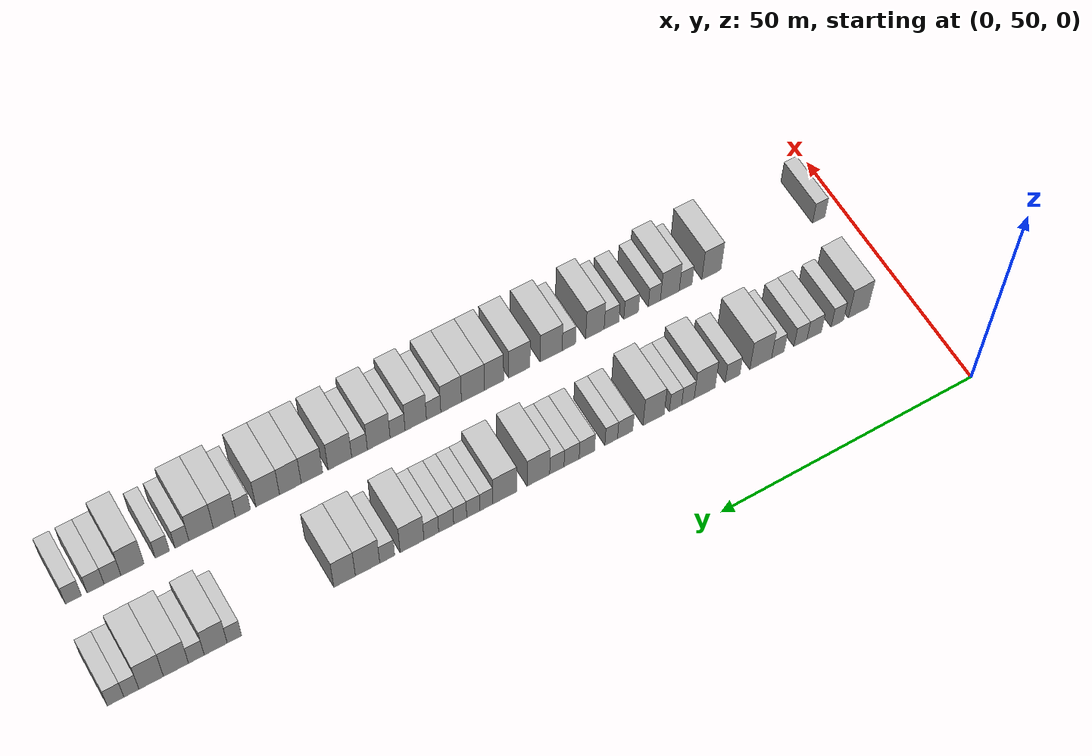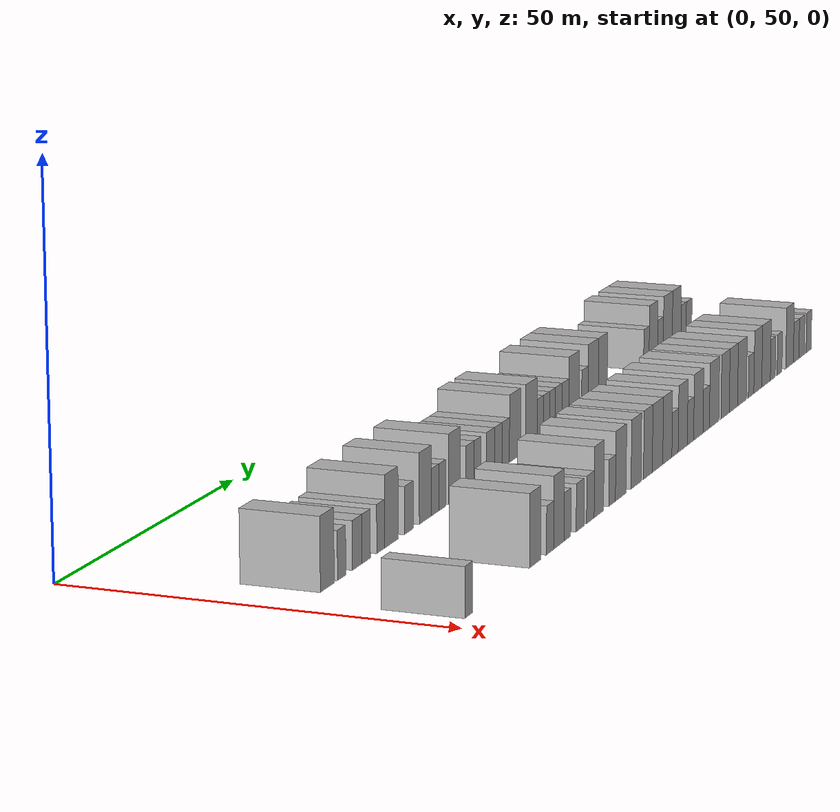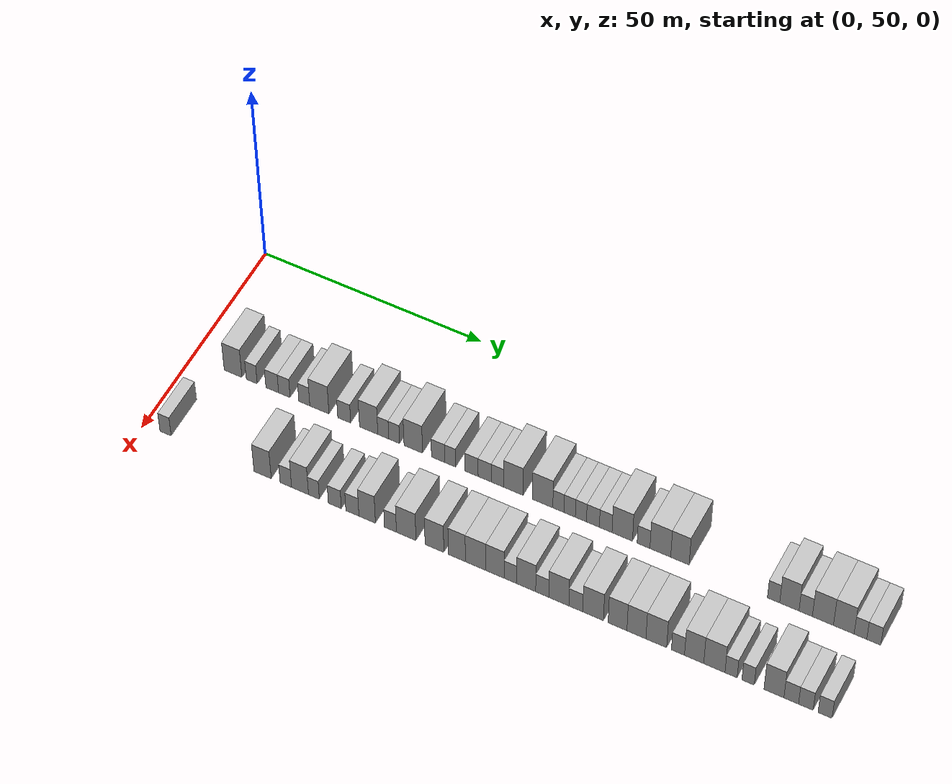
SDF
<sdf version="1.6">
 <world name="default">
  <model name="building_67">
   <static>1</static>
   <pose>25.0000 59.4550 0 0.000000 0.000000 0.000000</pose>
   <link name="link">
    <pose>0 0 4.50 0 0 0</pose>
    <collision name="collision"><geometry><box><size>10.0000 4.0994 9.0000</size></box></geometry></collision>
    <visual name="visual">
     <cast_shadows>0</cast_shadows>
     <geometry><box><size>10.0000 4.0994 9.0000</size></box></geometry>
     <material>
      <script>
       <uri>model://HANNAS_wall/materials/scripts</uri>
       <uri>model://HANNAS_wall/materials/textures</uri>
       <name>vrc/HANNAS_wall</name>
      </script>
     </material>
    </visual>
   </link>
  </model>
  <model name="building_68">
   <static>1</static>
   <pose>25.0000 63.7622 0 0.000000 0.000000 0.000000</pose>
   <link name="link">
    <pose>0 0 3.00 0 0 0</pose>
    <collision name="collision"><geometry><box><size>10.0000 2.5149 6.0000</size></box></geometry></collision>
    <visual name="visual">
     <cast_shadows>0</cast_shadows>
     <geometry><box><size>10.0000 2.5149 6.0000</size></box></geometry>
     <material>
      <script>
       <uri>model://HANNAS_wall/materials/scripts</uri>
       <uri>model://HANNAS_wall/materials/textures</uri>
       <name>vrc/HANNAS_wall</name>
      </script>
     </material>
    </visual>
   </link>
  </model>
  <model name="building_69">
   <static>1</static>
   <pose>25.0000 68.4789 0 0.000000 0.000000 0.000000</pose>
   <link name="link">
    <pose>0 0 3.00 0 0 0</pose>
    <collision name="collision"><geometry><box><size>10.0000 2.9186 6.0000</size></box></geometry></collision>
    <visual name="visual">
     <cast_shadows>0</cast_shadows>
     <geometry><box><size>10.0000 2.9186 6.0000</size></box></geometry>
     <material>
      <script>
       <uri>model://HANNAS_wall/materials/scripts</uri>
       <uri>model://HANNAS_wall/materials/textures</uri>
       <name>vrc/HANNAS_wall</name>
      </script>
     </material>
    </visual>
   </link>
  </model>
  <model name="building_70">
   <static>1</static>
   <pose>25.0000 71.2532 0 0.000000 0.000000 0.000000</pose>
   <link name="link">
    <pose>0 0 3.00 0 0 0</pose>
    <collision name="collision"><geometry><box><size>10.0000 2.6300 6.0000</size></box></geometry></collision>
    <visual name="visual">
     <cast_shadows>0</cast_shadows>
     <geometry><box><size>10.0000 2.6300 6.0000</size></box></geometry>
     <material>
      <script>
       <uri>model://HANNAS_wall/materials/scripts</uri>
       <uri>model://HANNAS_wall/materials/textures</uri>
       <name>vrc/HANNAS_wall</name>
      </script>
     </material>
    </visual>
   </link>
  </model>
  <model name="building_71">
   <static>1</static>
   <pose>25.0000 75.8257 0 0.000000 0.000000 0.000000</pose>
   <link name="link">
    <pose>0 0 3.00 0 0 0</pose>
    <collision name="collision"><geometry><box><size>10.0000 2.5148 6.0000</size></box></geometry></collision>
    <visual name="visual">
     <cast_shadows>0</cast_shadows>
     <geometry><box><size>10.0000 2.5148 6.0000</size></box></geometry>
     <material>
      <script>
       <uri>model://HANNAS_wall/materials/scripts</uri>
       <uri>model://HANNAS_wall/materials/textures</uri>
       <name>vrc/HANNAS_wall</name>
      </script>
     </material>
    </visual>
   </link>
  </model>
  <model name="building_72">
   <static>1</static>
   <pose>25.0000 79.2634 0 0.000000 0.000000 0.000000</pose>
   <link name="link">
    <pose>0 0 4.50 0 0 0</pose>
    <collision name="collision"><geometry><box><size>10.0000 4.3607 9.0000</size></box></geometry></collision>
    <visual name="visual">
     <cast_shadows>0</cast_shadows>
     <geometry><box><size>10.0000 4.3607 9.0000</size></box></geometry>
     <material>
      <script>
       <uri>model://HANNAS_wall/materials/scripts</uri>
       <uri>model://HANNAS_wall/materials/textures</uri>
       <name>vrc/HANNAS_wall</name>
      </script>
     </material>
    </visual>
   </link>
  </model>
  <model name="building_73">
   <static>1</static>
   <pose>25.0000 84.9128 0 0.000000 0.000000 0.000000</pose>
   <link name="link">
    <pose>0 0 3.00 0 0 0</pose>
    <collision name="collision"><geometry><box><size>10.0000 2.9382 6.0000</size></box></geometry></collision>
    <visual name="visual">
     <cast_shadows>0</cast_shadows>
     <geometry><box><size>10.0000 2.9382 6.0000</size></box></geometry>
     <material>
      <script>
       <uri>model://HANNAS_wall/materials/scripts</uri>
       <uri>model://HANNAS_wall/materials/textures</uri>
       <name>vrc/HANNAS_wall</name>
      </script>
     </material>
    </visual>
   </link>
  </model>
  <model name="building_74">
   <static>1</static>
   <pose>25.0000 90.4444 0 0.000000 0.000000 0.000000</pose>
   <link name="link">
    <pose>0 0 4.50 0 0 0</pose>
    <collision name="collision"><geometry><box><size>10.0000 4.1249 9.0000</size></box></geometry></collision>
    <visual name="visual">
     <cast_shadows>0</cast_shadows>
     <geometry><box><size>10.0000 4.1249 9.0000</size></box></geometry>
     <material>
      <script>
       <uri>model://HANNAS_wall/materials/scripts</uri>
       <uri>model://HANNAS_wall/materials/textures</uri>
       <name>vrc/HANNAS_wall</name>
      </script>
     </material>
    </visual>
   </link>
  </model>
  <model name="building_75">
   <static>1</static>
   <pose>25.0000 93.7471 0 0.000000 0.000000 0.000000</pose>
   <link name="link">
    <pose>0 0 3.00 0 0 0</pose>
    <collision name="collision"><geometry><box><size>10.0000 2.4805 6.0000</size></box></geometry></collision>
    <visual name="visual">
     <cast_shadows>0</cast_shadows>
     <geometry><box><size>10.0000 2.4805 6.0000</size></box></geometry>
     <material>
      <script>
       <uri>model://HANNAS_wall/materials/scripts</uri>
       <uri>model://HANNAS_wall/materials/textures</uri>
       <name>vrc/HANNAS_wall</name>
      </script>
     </material>
    </visual>
   </link>
  </model>
  <model name="building_76">
   <static>1</static>
   <pose>25.0000 96.1940 0 0.000000 0.000000 0.000000</pose>
   <link name="link">
    <pose>0 0 3.00 0 0 0</pose>
    <collision name="collision"><geometry><box><size>10.0000 2.4133 6.0000</size></box></geometry></collision>
    <visual name="visual">
     <cast_shadows>0</cast_shadows>
     <geometry><box><size>10.0000 2.4133 6.0000</size></box></geometry>
     <material>
      <script>
       <uri>model://HANNAS_wall/materials/scripts</uri>
       <uri>model://HANNAS_wall/materials/textures</uri>
       <name>vrc/HANNAS_wall</name>
      </script>
     </material>
    </visual>
   </link>
  </model>
  <model name="building_77">
   <static>1</static>
   <pose>25.0000 100.4716 0 0.000000 0.000000 0.000000</pose>
   <link name="link">
    <pose>0 0 4.50 0 0 0</pose>
    <collision name="collision"><geometry><box><size>10.0000 4.1419 9.0000</size></box></geometry></collision>
    <visual name="visual">
     <cast_shadows>0</cast_shadows>
     <geometry><box><size>10.0000 4.1419 9.0000</size></box></geometry>
     <material>
      <script>
       <uri>model://HANNAS_wall/materials/scripts</uri>
       <uri>model://HANNAS_wall/materials/textures</uri>
       <name>vrc/HANNAS_wall</name>
      </script>
     </material>
    </visual>
   </link>
  </model>
  <model name="building_78">
   <static>1</static>
   <pose>25.0000 106.0221 0 0.000000 0.000000 0.000000</pose>
   <link name="link">
    <pose>0 0 3.00 0 0 0</pose>
    <collision name="collision"><geometry><box><size>10.0000 2.9590 6.0000</size></box></geometry></collision>
    <visual name="visual">
     <cast_shadows>0</cast_shadows>
     <geometry><box><size>10.0000 2.9590 6.0000</size></box></geometry>
     <material>
      <script>
       <uri>model://HANNAS_wall/materials/scripts</uri>
       <uri>model://HANNAS_wall/materials/textures</uri>
       <name>vrc/HANNAS_wall</name>
      </script>
     </material>
    </visual>
   </link>
  </model>
  <model name="building_79">
   <static>1</static>
   <pose>25.0000 108.7232 0 0.000000 0.000000 0.000000</pose>
   <link name="link">
    <pose>0 0 3.00 0 0 0</pose>
    <collision name="collision"><geometry><box><size>10.0000 2.4432 6.0000</size></box></geometry></collision>
    <visual name="visual">
     <cast_shadows>0</cast_shadows>
     <geometry><box><size>10.0000 2.4432 6.0000</size></box></geometry>
     <material>
      <script>
       <uri>model://HANNAS_wall/materials/scripts</uri>
       <uri>model://HANNAS_wall/materials/textures</uri>
       <name>vrc/HANNAS_wall</name>
      </script>
     </material>
    </visual>
   </link>
  </model>
  <model name="building_80">
   <static>1</static>
   <pose>25.0000 113.4279 0 0.000000 0.000000 0.000000</pose>
   <link name="link">
    <pose>0 0 3.00 0 0 0</pose>
    <collision name="collision"><geometry><box><size>10.0000 2.9661 6.0000</size></box></geometry></collision>
    <visual name="visual">
     <cast_shadows>0</cast_shadows>
     <geometry><box><size>10.0000 2.9661 6.0000</size></box></geometry>
     <material>
      <script>
       <uri>model://HANNAS_wall/materials/scripts</uri>
       <uri>model://HANNAS_wall/materials/textures</uri>
       <name>vrc/HANNAS_wall</name>
      </script>
     </material>
    </visual>
   </link>
  </model>
  <model name="building_81">
   <static>1</static>
   <pose>25.0000 116.3628 0 0.000000 0.000000 0.000000</pose>
   <link name="link">
    <pose>0 0 3.00 0 0 0</pose>
    <collision name="collision"><geometry><box><size>10.0000 2.9037 6.0000</size></box></geometry></collision>
    <visual name="visual">
     <cast_shadows>0</cast_shadows>
     <geometry><box><size>10.0000 2.9037 6.0000</size></box></geometry>
     <material>
      <script>
       <uri>model://HANNAS_wall/materials/scripts</uri>
       <uri>model://HANNAS_wall/materials/textures</uri>
       <name>vrc/HANNAS_wall</name>
      </script>
     </material>
    </visual>
   </link>
  </model>
  <model name="building_82">
   <static>1</static>
   <pose>25.0000 119.1823 0 0.000000 0.000000 0.000000</pose>
   <link name="link">
    <pose>0 0 3.00 0 0 0</pose>
    <collision name="collision"><geometry><box><size>10.0000 2.7352 6.0000</size></box></geometry></collision>
    <visual name="visual">
     <cast_shadows>0</cast_shadows>
     <geometry><box><size>10.0000 2.7352 6.0000</size></box></geometry>
     <material>
      <script>
       <uri>model://HANNAS_wall/materials/scripts</uri>
       <uri>model://HANNAS_wall/materials/textures</uri>
       <name>vrc/HANNAS_wall</name>
      </script>
     </material>
    </visual>
   </link>
  </model>
  <model name="building_83">
   <static>1</static>
   <pose>25.0000 122.6996 0 0.000000 0.000000 0.000000</pose>
   <link name="link">
    <pose>0 0 4.50 0 0 0</pose>
    <collision name="collision"><geometry><box><size>10.0000 4.2995 9.0000</size></box></geometry></collision>
    <visual name="visual">
     <cast_shadows>0</cast_shadows>
     <geometry><box><size>10.0000 4.2995 9.0000</size></box></geometry>
     <material>
      <script>
       <uri>model://HANNAS_wall/materials/scripts</uri>
       <uri>model://HANNAS_wall/materials/textures</uri>
       <name>vrc/HANNAS_wall</name>
      </script>
     </material>
    </visual>
   </link>
  </model>
  <model name="building_84">
   <static>1</static>
   <pose>25.0000 129.0897 0 0.000000 0.000000 0.000000</pose>
   <link name="link">
    <pose>0 0 4.50 0 0 0</pose>
    <collision name="collision"><geometry><box><size>10.0000 4.4806 9.0000</size></box></geometry></collision>
    <visual name="visual">
     <cast_shadows>0</cast_shadows>
     <geometry><box><size>10.0000 4.4806 9.0000</size></box></geometry>
     <material>
      <script>
       <uri>model://HANNAS_wall/materials/scripts</uri>
       <uri>model://HANNAS_wall/materials/textures</uri>
       <name>vrc/HANNAS_wall</name>
      </script>
     </material>
    </visual>
   </link>
  </model>
  <model name="building_85">
   <static>1</static>
   <pose>25.0000 132.5447 0 0.000000 0.000000 0.000000</pose>
   <link name="link">
    <pose>0 0 3.00 0 0 0</pose>
    <collision name="collision"><geometry><box><size>10.0000 2.4294 6.0000</size></box></geometry></collision>
    <visual name="visual">
     <cast_shadows>0</cast_shadows>
     <geometry><box><size>10.0000 2.4294 6.0000</size></box></geometry>
     <material>
      <script>
       <uri>model://HANNAS_wall/materials/scripts</uri>
       <uri>model://HANNAS_wall/materials/textures</uri>
       <name>vrc/HANNAS_wall</name>
      </script>
     </material>
    </visual>
   </link>
  </model>
  <model name="building_86">
   <static>1</static>
   <pose>25.0000 134.9929 0 0.000000 0.000000 0.000000</pose>
   <link name="link">
    <pose>0 0 3.00 0 0 0</pose>
    <collision name="collision"><geometry><box><size>10.0000 2.4671 6.0000</size></box></geometry></collision>
    <visual name="visual">
     <cast_shadows>0</cast_shadows>
     <geometry><box><size>10.0000 2.4671 6.0000</size></box></geometry>
     <material>
      <script>
       <uri>model://HANNAS_wall/materials/scripts</uri>
       <uri>model://HANNAS_wall/materials/textures</uri>
       <name>vrc/HANNAS_wall</name>
      </script>
     </material>
    </visual>
   </link>
  </model>
  <model name="building_87">
   <static>1</static>
   <pose>25.0000 137.4405 0 0.000000 0.000000 0.000000</pose>
   <link name="link">
    <pose>0 0 3.00 0 0 0</pose>
    <collision name="collision"><geometry><box><size>10.0000 2.4281 6.0000</size></box></geometry></collision>
    <visual name="visual">
     <cast_shadows>0</cast_shadows>
     <geometry><box><size>10.0000 2.4281 6.0000</size></box></geometry>
     <material>
      <script>
       <uri>model://HANNAS_wall/materials/scripts</uri>
       <uri>model://HANNAS_wall/materials/textures</uri>
       <name>vrc/HANNAS_wall</name>
      </script>
     </material>
    </visual>
   </link>
  </model>
  <model name="building_88">
   <static>1</static>
   <pose>25.0000 140.0556 0 0.000000 0.000000 0.000000</pose>
   <link name="link">
    <pose>0 0 3.00 0 0 0</pose>
    <collision name="collision"><geometry><box><size>10.0000 2.8020 6.0000</size></box></geometry></collision>
    <visual name="visual">
     <cast_shadows>0</cast_shadows>
     <geometry><box><size>10.0000 2.8020 6.0000</size></box></geometry>
     <material>
      <script>
       <uri>model://HANNAS_wall/materials/scripts</uri>
       <uri>model://HANNAS_wall/materials/textures</uri>
       <name>vrc/HANNAS_wall</name>
      </script>
     </material>
    </visual>
   </link>
  </model>
  <model name="building_89">
   <static>1</static>
   <pose>25.0000 142.8223 0 0.000000 0.000000 0.000000</pose>
   <link name="link">
    <pose>0 0 3.00 0 0 0</pose>
    <collision name="collision"><geometry><box><size>10.0000 2.7314 6.0000</size></box></geometry></collision>
    <visual name="visual">
     <cast_shadows>0</cast_shadows>
     <geometry><box><size>10.0000 2.7314 6.0000</size></box></geometry>
     <material>
      <script>
       <uri>model://HANNAS_wall/materials/scripts</uri>
       <uri>model://HANNAS_wall/materials/textures</uri>
       <name>vrc/HANNAS_wall</name>
      </script>
     </material>
    </visual>
   </link>
  </model>
  <model name="building_90">
   <static>1</static>
   <pose>25.0000 146.3913 0 0.000000 0.000000 0.000000</pose>
   <link name="link">
    <pose>0 0 4.50 0 0 0</pose>
    <collision name="collision"><geometry><box><size>10.0000 4.4065 9.0000</size></box></geometry></collision>
    <visual name="visual">
     <cast_shadows>0</cast_shadows>
     <geometry><box><size>10.0000 4.4065 9.0000</size></box></geometry>
     <material>
      <script>
       <uri>model://HANNAS_wall/materials/scripts</uri>
       <uri>model://HANNAS_wall/materials/textures</uri>
       <name>vrc/HANNAS_wall</name>
      </script>
     </material>
    </visual>
   </link>
  </model>
  <model name="building_91">
   <static>1</static>
   <pose>25.0000 150.9687 0 0.000000 0.000000 0.000000</pose>
   <link name="link">
    <pose>0 0 3.00 0 0 0</pose>
    <collision name="collision"><geometry><box><size>10.0000 2.7483 6.0000</size></box></geometry></collision>
    <visual name="visual">
     <cast_shadows>0</cast_shadows>
     <geometry><box><size>10.0000 2.7483 6.0000</size></box></geometry>
     <material>
      <script>
       <uri>model://HANNAS_wall/materials/scripts</uri>
       <uri>model://HANNAS_wall/materials/textures</uri>
       <name>vrc/HANNAS_wall</name>
      </script>
     </material>
    </visual>
   </link>
  </model>
  <model name="building_92">
   <static>1</static>
   <pose>25.0000 154.5702 0 0.000000 0.000000 0.000000</pose>
   <link name="link">
    <pose>0 0 4.50 0 0 0</pose>
    <collision name="collision"><geometry><box><size>10.0000 4.4548 9.0000</size></box></geometry></collision>
    <visual name="visual">
     <cast_shadows>0</cast_shadows>
     <geometry><box><size>10.0000 4.4548 9.0000</size></box></geometry>
     <material>
      <script>
       <uri>model://HANNAS_wall/materials/scripts</uri>
       <uri>model://HANNAS_wall/materials/textures</uri>
       <name>vrc/HANNAS_wall</name>
      </script>
     </material>
    </visual>
   </link>
  </model>
  <model name="building_93">
   <static>1</static>
   <pose>25.0000 158.7625 0 0.000000 0.000000 0.000000</pose>
   <link name="link">
    <pose>0 0 4.50 0 0 0</pose>
    <collision name="collision"><geometry><box><size>10.0000 3.9299 9.0000</size></box></geometry></collision>
    <visual name="visual">
     <cast_shadows>0</cast_shadows>
     <geometry><box><size>10.0000 3.9299 9.0000</size></box></geometry>
     <material>
      <script>
       <uri>model://HANNAS_wall/materials/scripts</uri>
       <uri>model://HANNAS_wall/materials/textures</uri>
       <name>vrc/HANNAS_wall</name>
      </script>
     </material>
    </visual>
   </link>
  </model>
  <model name="building_94">
   <static>1</static>
   <pose>25.0000 178.5883 0 0.000000 0.000000 0.000000</pose>
   <link name="link">
    <pose>0 0 3.00 0 0 0</pose>
    <collision name="collision"><geometry><box><size>10.0000 2.5739 6.0000</size></box></geometry></collision>
    <visual name="visual">
     <cast_shadows>0</cast_shadows>
     <geometry><box><size>10.0000 2.5739 6.0000</size></box></geometry>
     <material>
      <script>
       <uri>model://HANNAS_wall/materials/scripts</uri>
       <uri>model://HANNAS_wall/materials/textures</uri>
       <name>vrc/HANNAS_wall</name>
      </script>
     </material>
    </visual>
   </link>
  </model>
  <model name="building_95">
   <static>1</static>
   <pose>25.0000 181.8974 0 0.000000 0.000000 0.000000</pose>
   <link name="link">
    <pose>0 0 4.50 0 0 0</pose>
    <collision name="collision"><geometry><box><size>10.0000 4.0443 9.0000</size></box></geometry></collision>
    <visual name="visual">
     <cast_shadows>0</cast_shadows>
     <geometry><box><size>10.0000 4.0443 9.0000</size></box></geometry>
     <material>
      <script>
       <uri>model://HANNAS_wall/materials/scripts</uri>
       <uri>model://HANNAS_wall/materials/textures</uri>
       <name>vrc/HANNAS_wall</name>
      </script>
     </material>
    </visual>
   </link>
  </model>
  <model name="building_96">
   <static>1</static>
   <pose>25.0000 185.3083 0 0.000000 0.000000 0.000000</pose>
   <link name="link">
    <pose>0 0 3.00 0 0 0</pose>
    <collision name="collision"><geometry><box><size>10.0000 2.7775 6.0000</size></box></geometry></collision>
    <visual name="visual">
     <cast_shadows>0</cast_shadows>
     <geometry><box><size>10.0000 2.7775 6.0000</size></box></geometry>
     <material>
      <script>
       <uri>model://HANNAS_wall/materials/scripts</uri>
       <uri>model://HANNAS_wall/materials/textures</uri>
       <name>vrc/HANNAS_wall</name>
      </script>
     </material>
    </visual>
   </link>
  </model>
  <model name="building_97">
   <static>1</static>
   <pose>25.0000 188.8926 0 0.000000 0.000000 0.000000</pose>
   <link name="link">
    <pose>0 0 4.50 0 0 0</pose>
    <collision name="collision"><geometry><box><size>10.0000 4.3911 9.0000</size></box></geometry></collision>
    <visual name="visual">
     <cast_shadows>0</cast_shadows>
     <geometry><box><size>10.0000 4.3911 9.0000</size></box></geometry>
     <material>
      <script>
       <uri>model://HANNAS_wall/materials/scripts</uri>
       <uri>model://HANNAS_wall/materials/textures</uri>
       <name>vrc/HANNAS_wall</name>
      </script>
     </material>
    </visual>
   </link>
  </model>
  <model name="building_98">
   <static>1</static>
   <pose>25.0000 193.2294 0 0.000000 0.000000 0.000000</pose>
   <link name="link">
    <pose>0 0 4.50 0 0 0</pose>
    <collision name="collision"><geometry><box><size>10.0000 4.2827 9.0000</size></box></geometry></collision>
    <visual name="visual">
     <cast_shadows>0</cast_shadows>
     <geometry><box><size>10.0000 4.2827 9.0000</size></box></geometry>
     <material>
      <script>
       <uri>model://HANNAS_wall/materials/scripts</uri>
       <uri>model://HANNAS_wall/materials/textures</uri>
       <name>vrc/HANNAS_wall</name>
      </script>
     </material>
    </visual>
   </link>
  </model>
  <model name="building_99">
   <static>1</static>
   <pose>25.0000 196.6763 0 0.000000 0.000000 0.000000</pose>
   <link name="link">
    <pose>0 0 3.00 0 0 0</pose>
    <collision name="collision"><geometry><box><size>10.0000 2.6111 6.0000</size></box></geometry></collision>
    <visual name="visual">
     <cast_shadows>0</cast_shadows>
     <geometry><box><size>10.0000 2.6111 6.0000</size></box></geometry>
     <material>
      <script>
       <uri>model://HANNAS_wall/materials/scripts</uri>
       <uri>model://HANNAS_wall/materials/textures</uri>
       <name>vrc/HANNAS_wall</name>
      </script>
     </material>
    </visual>
   </link>
  </model>
  <model name="building_100">
   <static>1</static>
   <pose>25.0000 199.4241 0 0.000000 0.000000 0.000000</pose>
   <link name="link">
    <pose>0 0 3.00 0 0 0</pose>
    <collision name="collision"><geometry><box><size>10.0000 2.8844 6.0000</size></box></geometry></collision>
    <visual name="visual">
     <cast_shadows>0</cast_shadows>
     <geometry><box><size>10.0000 2.8844 6.0000</size></box></geometry>
     <material>
      <script>
       <uri>model://HANNAS_wall/materials/scripts</uri>
       <uri>model://HANNAS_wall/materials/textures</uri>
       <name>vrc/HANNAS_wall</name>
      </script>
     </material>
    </visual>
   </link>
  </model>
  <model name="building_165">
   <static>1</static>
   <pose>44.0000 54.9185 0 0.000000 0.000000 0.000000</pose>
   <link name="link">
    <pose>0 0 3.00 0 0 0</pose>
    <collision name="collision"><geometry><box><size>10.0000 2.5703 6.0000</size></box></geometry></collision>
    <visual name="visual">
     <cast_shadows>0</cast_shadows>
     <geometry><box><size>10.0000 2.5703 6.0000</size></box></geometry>
     <material>
      <script>
       <uri>model://HANNAS_wall/materials/scripts</uri>
       <uri>model://HANNAS_wall/materials/textures</uri>
       <name>vrc/HANNAS_wall</name>
      </script>
     </material>
    </visual>
   </link>
  </model>
  <model name="building_166">
   <static>1</static>
   <pose>44.0000 77.0360 0 0.000000 0.000000 0.000000</pose>
   <link name="link">
    <pose>0 0 4.50 0 0 0</pose>
    <collision name="collision"><geometry><box><size>10.0000 3.8882 9.0000</size></box></geometry></collision>
    <visual name="visual">
     <cast_shadows>0</cast_shadows>
     <geometry><box><size>10.0000 3.8882 9.0000</size></box></geometry>
     <material>
      <script>
       <uri>model://HANNAS_wall/materials/scripts</uri>
       <uri>model://HANNAS_wall/materials/textures</uri>
       <name>vrc/HANNAS_wall</name>
      </script>
     </material>
    </visual>
   </link>
  </model>
  <model name="building_167">
   <static>1</static>
   <pose>44.0000 82.2686 0 0.000000 0.000000 0.000000</pose>
   <link name="link">
    <pose>0 0 3.00 0 0 0</pose>
    <collision name="collision"><geometry><box><size>10.0000 2.5770 6.0000</size></box></geometry></collision>
    <visual name="visual">
     <cast_shadows>0</cast_shadows>
     <geometry><box><size>10.0000 2.5770 6.0000</size></box></geometry>
     <material>
      <script>
       <uri>model://HANNAS_wall/materials/scripts</uri>
       <uri>model://HANNAS_wall/materials/textures</uri>
       <name>vrc/HANNAS_wall</name>
      </script>
     </material>
    </visual>
   </link>
  </model>
  <model name="building_168">
   <static>1</static>
   <pose>44.0000 85.4556 0 0.000000 0.000000 0.000000</pose>
   <link name="link">
    <pose>0 0 4.50 0 0 0</pose>
    <collision name="collision"><geometry><box><size>10.0000 3.7969 9.0000</size></box></geometry></collision>
    <visual name="visual">
     <cast_shadows>0</cast_shadows>
     <geometry><box><size>10.0000 3.7969 9.0000</size></box></geometry>
     <material>
      <script>
       <uri>model://HANNAS_wall/materials/scripts</uri>
       <uri>model://HANNAS_wall/materials/textures</uri>
       <name>vrc/HANNAS_wall</name>
      </script>
     </material>
    </visual>
   </link>
  </model>
  <model name="building_169">
   <static>1</static>
   <pose>44.0000 88.5654 0 0.000000 0.000000 0.000000</pose>
   <link name="link">
    <pose>0 0 3.00 0 0 0</pose>
    <collision name="collision"><geometry><box><size>10.0000 2.4226 6.0000</size></box></geometry></collision>
    <visual name="visual">
     <cast_shadows>0</cast_shadows>
     <geometry><box><size>10.0000 2.4226 6.0000</size></box></geometry>
     <material>
      <script>
       <uri>model://HANNAS_wall/materials/scripts</uri>
       <uri>model://HANNAS_wall/materials/textures</uri>
       <name>vrc/HANNAS_wall</name>
      </script>
     </material>
    </visual>
   </link>
  </model>
  <model name="building_170">
   <static>1</static>
   <pose>44.0000 93.2275 0 0.000000 0.000000 0.000000</pose>
   <link name="link">
    <pose>0 0 3.00 0 0 0</pose>
    <collision name="collision"><geometry><box><size>10.0000 2.9016 6.0000</size></box></geometry></collision>
    <visual name="visual">
     <cast_shadows>0</cast_shadows>
     <geometry><box><size>10.0000 2.9016 6.0000</size></box></geometry>
     <material>
      <script>
       <uri>model://HANNAS_wall/materials/scripts</uri>
       <uri>model://HANNAS_wall/materials/textures</uri>
       <name>vrc/HANNAS_wall</name>
      </script>
     </material>
    </visual>
   </link>
  </model>
  <model name="building_171">
   <static>1</static>
   <pose>44.0000 97.1319 0 0.000000 0.000000 0.000000</pose>
   <link name="link">
    <pose>0 0 3.00 0 0 0</pose>
    <collision name="collision"><geometry><box><size>10.0000 2.9074 6.0000</size></box></geometry></collision>
    <visual name="visual">
     <cast_shadows>0</cast_shadows>
     <geometry><box><size>10.0000 2.9074 6.0000</size></box></geometry>
     <material>
      <script>
       <uri>model://HANNAS_wall/materials/scripts</uri>
       <uri>model://HANNAS_wall/materials/textures</uri>
       <name>vrc/HANNAS_wall</name>
      </script>
     </material>
    </visual>
   </link>
  </model>
  <model name="building_172">
   <static>1</static>
   <pose>44.0000 100.4155 0 0.000000 0.000000 0.000000</pose>
   <link name="link">
    <pose>0 0 4.50 0 0 0</pose>
    <collision name="collision"><geometry><box><size>10.0000 3.6598 9.0000</size></box></geometry></collision>
    <visual name="visual">
     <cast_shadows>0</cast_shadows>
     <geometry><box><size>10.0000 3.6598 9.0000</size></box></geometry>
     <material>
      <script>
       <uri>model://HANNAS_wall/materials/scripts</uri>
       <uri>model://HANNAS_wall/materials/textures</uri>
       <name>vrc/HANNAS_wall</name>
      </script>
     </material>
    </visual>
   </link>
  </model>
  <model name="building_173">
   <static>1</static>
   <pose>44.0000 105.5631 0 0.000000 0.000000 0.000000</pose>
   <link name="link">
    <pose>0 0 3.00 0 0 0</pose>
    <collision name="collision"><geometry><box><size>10.0000 2.6354 6.0000</size></box></geometry></collision>
    <visual name="visual">
     <cast_shadows>0</cast_shadows>
     <geometry><box><size>10.0000 2.6354 6.0000</size></box></geometry>
     <material>
      <script>
       <uri>model://HANNAS_wall/materials/scripts</uri>
       <uri>model://HANNAS_wall/materials/textures</uri>
       <name>vrc/HANNAS_wall</name>
      </script>
     </material>
    </visual>
   </link>
  </model>
  <model name="building_174">
   <static>1</static>
   <pose>44.0000 109.0263 0 0.000000 0.000000 0.000000</pose>
   <link name="link">
    <pose>0 0 4.50 0 0 0</pose>
    <collision name="collision"><geometry><box><size>10.0000 4.2910 9.0000</size></box></geometry></collision>
    <visual name="visual">
     <cast_shadows>0</cast_shadows>
     <geometry><box><size>10.0000 4.2910 9.0000</size></box></geometry>
     <material>
      <script>
       <uri>model://HANNAS_wall/materials/scripts</uri>
       <uri>model://HANNAS_wall/materials/textures</uri>
       <name>vrc/HANNAS_wall</name>
      </script>
     </material>
    </visual>
   </link>
  </model>
  <model name="building_175">
   <static>1</static>
   <pose>44.0000 115.2267 0 0.000000 0.000000 0.000000</pose>
   <link name="link">
    <pose>0 0 4.50 0 0 0</pose>
    <collision name="collision"><geometry><box><size>10.0000 4.1096 9.0000</size></box></geometry></collision>
    <visual name="visual">
     <cast_shadows>0</cast_shadows>
     <geometry><box><size>10.0000 4.1096 9.0000</size></box></geometry>
     <material>
      <script>
       <uri>model://HANNAS_wall/materials/scripts</uri>
       <uri>model://HANNAS_wall/materials/textures</uri>
       <name>vrc/HANNAS_wall</name>
      </script>
     </material>
    </visual>
   </link>
  </model>
  <model name="building_176">
   <static>1</static>
   <pose>44.0000 120.1310 0 0.000000 0.000000 0.000000</pose>
   <link name="link">
    <pose>0 0 4.50 0 0 0</pose>
    <collision name="collision"><geometry><box><size>10.0000 3.6991 9.0000</size></box></geometry></collision>
    <visual name="visual">
     <cast_shadows>0</cast_shadows>
     <geometry><box><size>10.0000 3.6991 9.0000</size></box></geometry>
     <material>
      <script>
       <uri>model://HANNAS_wall/materials/scripts</uri>
       <uri>model://HANNAS_wall/materials/textures</uri>
       <name>vrc/HANNAS_wall</name>
      </script>
     </material>
    </visual>
   </link>
  </model>
  <model name="building_177">
   <static>1</static>
   <pose>44.0000 124.1989 0 0.000000 0.000000 0.000000</pose>
   <link name="link">
    <pose>0 0 4.50 0 0 0</pose>
    <collision name="collision"><geometry><box><size>10.0000 4.4366 9.0000</size></box></geometry></collision>
    <visual name="visual">
     <cast_shadows>0</cast_shadows>
     <geometry><box><size>10.0000 4.4366 9.0000</size></box></geometry>
     <material>
      <script>
       <uri>model://HANNAS_wall/materials/scripts</uri>
       <uri>model://HANNAS_wall/materials/textures</uri>
       <name>vrc/HANNAS_wall</name>
      </script>
     </material>
    </visual>
   </link>
  </model>
  <model name="building_178">
   <static>1</static>
   <pose>44.0000 128.3902 0 0.000000 0.000000 0.000000</pose>
   <link name="link">
    <pose>0 0 4.50 0 0 0</pose>
    <collision name="collision"><geometry><box><size>10.0000 3.9460 9.0000</size></box></geometry></collision>
    <visual name="visual">
     <cast_shadows>0</cast_shadows>
     <geometry><box><size>10.0000 3.9460 9.0000</size></box></geometry>
     <material>
      <script>
       <uri>model://HANNAS_wall/materials/scripts</uri>
       <uri>model://HANNAS_wall/materials/textures</uri>
       <name>vrc/HANNAS_wall</name>
      </script>
     </material>
    </visual>
   </link>
  </model>
  <model name="building_179">
   <static>1</static>
   <pose>44.0000 131.7360 0 0.000000 0.000000 0.000000</pose>
   <link name="link">
    <pose>0 0 3.00 0 0 0</pose>
    <collision name="collision"><geometry><box><size>10.0000 2.7457 6.0000</size></box></geometry></collision>
    <visual name="visual">
     <cast_shadows>0</cast_shadows>
     <geometry><box><size>10.0000 2.7457 6.0000</size></box></geometry>
     <material>
      <script>
       <uri>model://HANNAS_wall/materials/scripts</uri>
       <uri>model://HANNAS_wall/materials/textures</uri>
       <name>vrc/HANNAS_wall</name>
      </script>
     </material>
    </visual>
   </link>
  </model>
  <model name="building_180">
   <static>1</static>
   <pose>44.0000 135.1361 0 0.000000 0.000000 0.000000</pose>
   <link name="link">
    <pose>0 0 4.50 0 0 0</pose>
    <collision name="collision"><geometry><box><size>10.0000 4.0544 9.0000</size></box></geometry></collision>
    <visual name="visual">
     <cast_shadows>0</cast_shadows>
     <geometry><box><size>10.0000 4.0544 9.0000</size></box></geometry>
     <material>
      <script>
       <uri>model://HANNAS_wall/materials/scripts</uri>
       <uri>model://HANNAS_wall/materials/textures</uri>
       <name>vrc/HANNAS_wall</name>
      </script>
     </material>
    </visual>
   </link>
  </model>
  <model name="building_181">
   <static>1</static>
   <pose>44.0000 138.5826 0 0.000000 0.000000 0.000000</pose>
   <link name="link">
    <pose>0 0 3.00 0 0 0</pose>
    <collision name="collision"><geometry><box><size>10.0000 2.8386 6.0000</size></box></geometry></collision>
    <visual name="visual">
     <cast_shadows>0</cast_shadows>
     <geometry><box><size>10.0000 2.8386 6.0000</size></box></geometry>
     <material>
      <script>
       <uri>model://HANNAS_wall/materials/scripts</uri>
       <uri>model://HANNAS_wall/materials/textures</uri>
       <name>vrc/HANNAS_wall</name>
      </script>
     </material>
    </visual>
   </link>
  </model>
  <model name="building_182">
   <static>1</static>
   <pose>44.0000 142.1379 0 0.000000 0.000000 0.000000</pose>
   <link name="link">
    <pose>0 0 4.50 0 0 0</pose>
    <collision name="collision"><geometry><box><size>10.0000 4.2719 9.0000</size></box></geometry></collision>
    <visual name="visual">
     <cast_shadows>0</cast_shadows>
     <geometry><box><size>10.0000 4.2719 9.0000</size></box></geometry>
     <material>
      <script>
       <uri>model://HANNAS_wall/materials/scripts</uri>
       <uri>model://HANNAS_wall/materials/textures</uri>
       <name>vrc/HANNAS_wall</name>
      </script>
     </material>
    </visual>
   </link>
  </model>
  <model name="building_183">
   <static>1</static>
   <pose>44.0000 145.7461 0 0.000000 0.000000 0.000000</pose>
   <link name="link">
    <pose>0 0 3.00 0 0 0</pose>
    <collision name="collision"><geometry><box><size>10.0000 2.9446 6.0000</size></box></geometry></collision>
    <visual name="visual">
     <cast_shadows>0</cast_shadows>
     <geometry><box><size>10.0000 2.9446 6.0000</size></box></geometry>
     <material>
      <script>
       <uri>model://HANNAS_wall/materials/scripts</uri>
       <uri>model://HANNAS_wall/materials/textures</uri>
       <name>vrc/HANNAS_wall</name>
      </script>
     </material>
    </visual>
   </link>
  </model>
  <model name="building_184">
   <static>1</static>
   <pose>44.0000 149.4260 0 0.000000 0.000000 0.000000</pose>
   <link name="link">
    <pose>0 0 4.50 0 0 0</pose>
    <collision name="collision"><geometry><box><size>10.0000 4.4152 9.0000</size></box></geometry></collision>
    <visual name="visual">
     <cast_shadows>0</cast_shadows>
     <geometry><box><size>10.0000 4.4152 9.0000</size></box></geometry>
     <material>
      <script>
       <uri>model://HANNAS_wall/materials/scripts</uri>
       <uri>model://HANNAS_wall/materials/textures</uri>
       <name>vrc/HANNAS_wall</name>
      </script>
     </material>
    </visual>
   </link>
  </model>
  <model name="building_185">
   <static>1</static>
   <pose>44.0000 154.6181 0 0.000000 0.000000 0.000000</pose>
   <link name="link">
    <pose>0 0 4.50 0 0 0</pose>
    <collision name="collision"><geometry><box><size>10.0000 3.9690 9.0000</size></box></geometry></collision>
    <visual name="visual">
     <cast_shadows>0</cast_shadows>
     <geometry><box><size>10.0000 3.9690 9.0000</size></box></geometry>
     <material>
      <script>
       <uri>model://HANNAS_wall/materials/scripts</uri>
       <uri>model://HANNAS_wall/materials/textures</uri>
       <name>vrc/HANNAS_wall</name>
      </script>
     </material>
    </visual>
   </link>
  </model>
  <model name="building_186">
   <static>1</static>
   <pose>44.0000 158.6096 0 0.000000 0.000000 0.000000</pose>
   <link name="link">
    <pose>0 0 4.50 0 0 0</pose>
    <collision name="collision"><geometry><box><size>10.0000 4.0141 9.0000</size></box></geometry></collision>
    <visual name="visual">
     <cast_shadows>0</cast_shadows>
     <geometry><box><size>10.0000 4.0141 9.0000</size></box></geometry>
     <material>
      <script>
       <uri>model://HANNAS_wall/materials/scripts</uri>
       <uri>model://HANNAS_wall/materials/textures</uri>
       <name>vrc/HANNAS_wall</name>
      </script>
     </material>
    </visual>
   </link>
  </model>
  <model name="building_187">
   <static>1</static>
   <pose>44.0000 162.7933 0 0.000000 0.000000 0.000000</pose>
   <link name="link">
    <pose>0 0 4.50 0 0 0</pose>
    <collision name="collision"><geometry><box><size>10.0000 4.3534 9.0000</size></box></geometry></collision>
    <visual name="visual">
     <cast_shadows>0</cast_shadows>
     <geometry><box><size>10.0000 4.3534 9.0000</size></box></geometry>
     <material>
      <script>
       <uri>model://HANNAS_wall/materials/scripts</uri>
       <uri>model://HANNAS_wall/materials/textures</uri>
       <name>vrc/HANNAS_wall</name>
      </script>
     </material>
    </visual>
   </link>
  </model>
  <model name="building_188">
   <static>1</static>
   <pose>44.0000 167.3402 0 0.000000 0.000000 0.000000</pose>
   <link name="link">
    <pose>0 0 3.00 0 0 0</pose>
    <collision name="collision"><geometry><box><size>10.0000 2.7404 6.0000</size></box></geometry></collision>
    <visual name="visual">
     <cast_shadows>0</cast_shadows>
     <geometry><box><size>10.0000 2.7404 6.0000</size></box></geometry>
     <material>
      <script>
       <uri>model://HANNAS_wall/materials/scripts</uri>
       <uri>model://HANNAS_wall/materials/textures</uri>
       <name>vrc/HANNAS_wall</name>
      </script>
     </material>
    </visual>
   </link>
  </model>
  <model name="building_189">
   <static>1</static>
   <pose>44.0000 170.7188 0 0.000000 0.000000 0.000000</pose>
   <link name="link">
    <pose>0 0 4.50 0 0 0</pose>
    <collision name="collision"><geometry><box><size>10.0000 4.0167 9.0000</size></box></geometry></collision>
    <visual name="visual">
     <cast_shadows>0</cast_shadows>
     <geometry><box><size>10.0000 4.0167 9.0000</size></box></geometry>
     <material>
      <script>
       <uri>model://HANNAS_wall/materials/scripts</uri>
       <uri>model://HANNAS_wall/materials/textures</uri>
       <name>vrc/HANNAS_wall</name>
      </script>
     </material>
    </visual>
   </link>
  </model>
  <model name="building_190">
   <static>1</static>
   <pose>44.0000 174.9387 0 0.000000 0.000000 0.000000</pose>
   <link name="link">
    <pose>0 0 4.50 0 0 0</pose>
    <collision name="collision"><geometry><box><size>10.0000 4.4231 9.0000</size></box></geometry></collision>
    <visual name="visual">
     <cast_shadows>0</cast_shadows>
     <geometry><box><size>10.0000 4.4231 9.0000</size></box></geometry>
     <material>
      <script>
       <uri>model://HANNAS_wall/materials/scripts</uri>
       <uri>model://HANNAS_wall/materials/textures</uri>
       <name>vrc/HANNAS_wall</name>
      </script>
     </material>
    </visual>
   </link>
  </model>
  <model name="building_191">
   <static>1</static>
   <pose>44.0000 178.4056 0 0.000000 0.000000 0.000000</pose>
   <link name="link">
    <pose>0 0 3.00 0 0 0</pose>
    <collision name="collision"><geometry><box><size>10.0000 2.5108 6.0000</size></box></geometry></collision>
    <visual name="visual">
     <cast_shadows>0</cast_shadows>
     <geometry><box><size>10.0000 2.5108 6.0000</size></box></geometry>
     <material>
      <script>
       <uri>model://HANNAS_wall/materials/scripts</uri>
       <uri>model://HANNAS_wall/materials/textures</uri>
       <name>vrc/HANNAS_wall</name>
      </script>
     </material>
    </visual>
   </link>
  </model>
  <model name="building_192">
   <static>1</static>
   <pose>44.0000 181.9360 0 0.000000 0.000000 0.000000</pose>
   <link name="link">
    <pose>0 0 3.00 0 0 0</pose>
    <collision name="collision"><geometry><box><size>10.0000 2.5499 6.0000</size></box></geometry></collision>
    <visual name="visual">
     <cast_shadows>0</cast_shadows>
     <geometry><box><size>10.0000 2.5499 6.0000</size></box></geometry>
     <material>
      <script>
       <uri>model://HANNAS_wall/materials/scripts</uri>
       <uri>model://HANNAS_wall/materials/textures</uri>
       <name>vrc/HANNAS_wall</name>
      </script>
     </material>
    </visual>
   </link>
  </model>
  <model name="building_193">
   <static>1</static>
   <pose>44.0000 187.2684 0 0.000000 0.000000 0.000000</pose>
   <link name="link">
    <pose>0 0 4.50 0 0 0</pose>
    <collision name="collision"><geometry><box><size>10.0000 4.1149 9.0000</size></box></geometry></collision>
    <visual name="visual">
     <cast_shadows>0</cast_shadows>
     <geometry><box><size>10.0000 4.1149 9.0000</size></box></geometry>
     <material>
      <script>
       <uri>model://HANNAS_wall/materials/scripts</uri>
       <uri>model://HANNAS_wall/materials/textures</uri>
       <name>vrc/HANNAS_wall</name>
      </script>
     </material>
    </visual>
   </link>
  </model>
  <model name="building_194">
   <static>1</static>
   <pose>44.0000 190.8258 0 0.000000 0.000000 0.000000</pose>
   <link name="link">
    <pose>0 0 3.00 0 0 0</pose>
    <collision name="collision"><geometry><box><size>10.0000 2.9999 6.0000</size></box></geometry></collision>
    <visual name="visual">
     <cast_shadows>0</cast_shadows>
     <geometry><box><size>10.0000 2.9999 6.0000</size></box></geometry>
     <material>
      <script>
       <uri>model://HANNAS_wall/materials/scripts</uri>
       <uri>model://HANNAS_wall/materials/textures</uri>
       <name>vrc/HANNAS_wall</name>
      </script>
     </material>
    </visual>
   </link>
  </model>
  <model name="building_195">
   <static>1</static>
   <pose>44.0000 193.8202 0 0.000000 0.000000 0.000000</pose>
   <link name="link">
    <pose>0 0 3.00 0 0 0</pose>
    <collision name="collision"><geometry><box><size>10.0000 2.9889 6.0000</size></box></geometry></collision>
    <visual name="visual">
     <cast_shadows>0</cast_shadows>
     <geometry><box><size>10.0000 2.9889 6.0000</size></box></geometry>
     <material>
      <script>
       <uri>model://HANNAS_wall/materials/scripts</uri>
       <uri>model://HANNAS_wall/materials/textures</uri>
       <name>vrc/HANNAS_wall</name>
      </script>
     </material>
    </visual>
   </link>
  </model>
  <model name="building_196">
   <static>1</static>
   <pose>44.0000 197.7403 0 0.000000 0.000000 0.000000</pose>
   <link name="link">
    <pose>0 0 3.00 0 0 0</pose>
    <collision name="collision"><geometry><box><size>10.0000 2.8512 6.0000</size></box></geometry></collision>
    <visual name="visual">
     <cast_shadows>0</cast_shadows>
     <geometry><box><size>10.0000 2.8512 6.0000</size></box></geometry>
     <material>
      <script>
       <uri>model://HANNAS_wall/materials/scripts</uri>
       <uri>model://HANNAS_wall/materials/textures</uri>
       <name>vrc/HANNAS_wall</name>
      </script>
     </material>
    </visual>
   </link>
  </model>
 </world>
</sdf>
